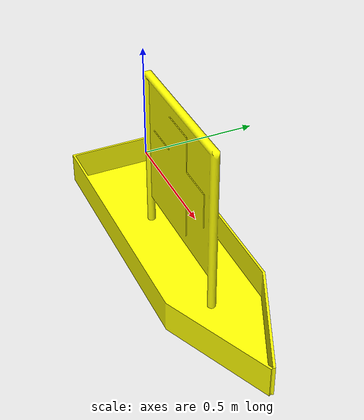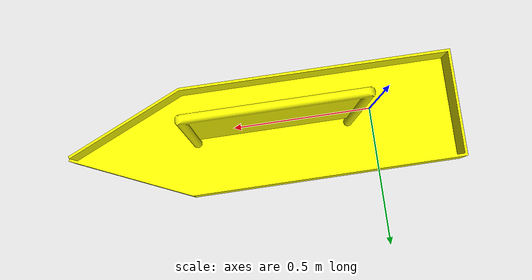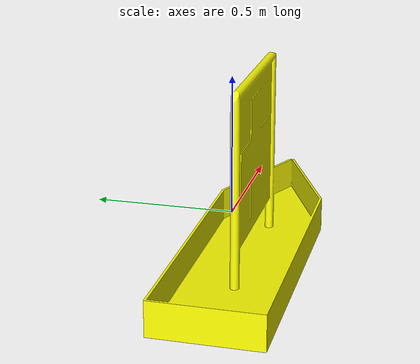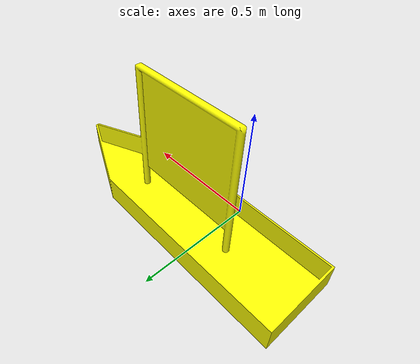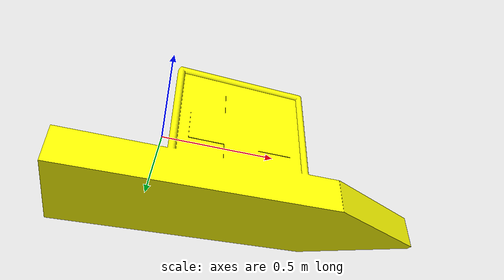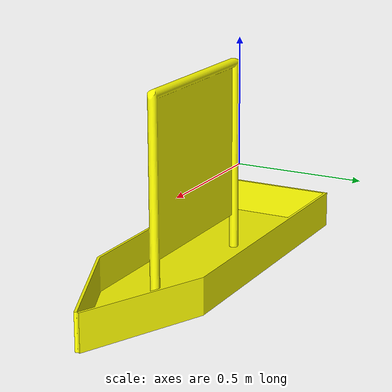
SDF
<?xml version="1.0" ?>
<sdf version="1.6">
    <model name="static_vessel">
        <static>true</static>
        <link name="link">
            <inertial>
                <pose>0 0 0 0 0 0</pose>
                <inertia>
                    <ixx>0.0875</ixx>
                    <ixy>0</ixy>
                    <ixz>0</ixz>
                    <iyy>0.0875</iyy>
                    <iyz>0</iyz>
                    <izz>0.0875</izz>
                </inertia>
            </inertial>
            <collision name="collision">
                <geometry>
                    <sphere>
                        <radius>0.25</radius>
                    </sphere>
                </geometry>
            </collision>
            <visual name="visual">
                <geometry>
                    <mesh>
                        <uri>meshes/static_vessel.dae</uri>
                    </mesh>
                </geometry>
                <material>
                    <ambient>1 0 0 1</ambient>
                    <diffuse>1 1 0 1</diffuse>
                    <specular>1 1 0 1</specular>
                </material>
            </visual>
        </link>
    </model>
</sdf>
